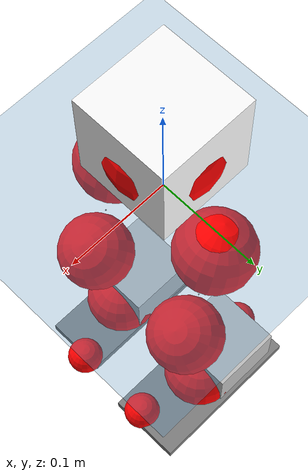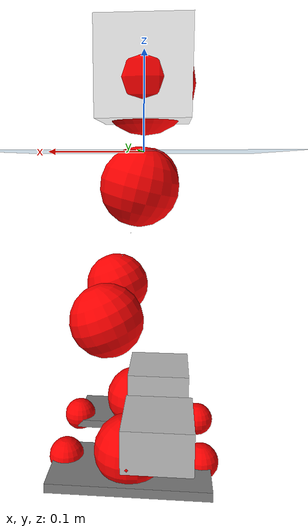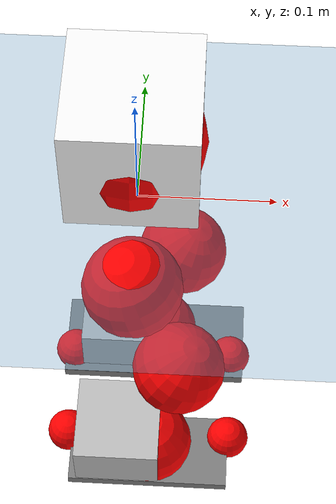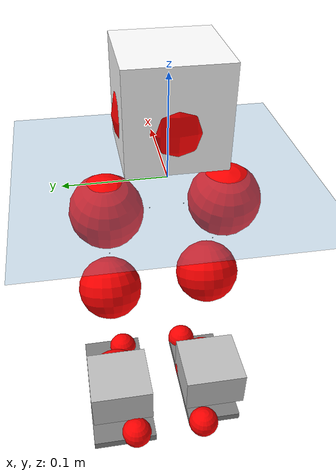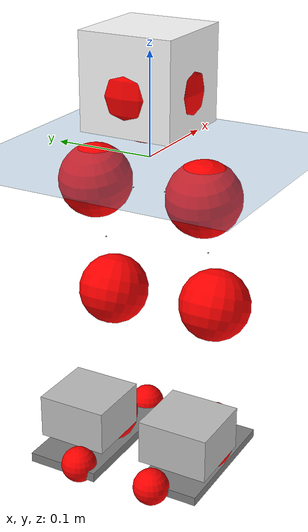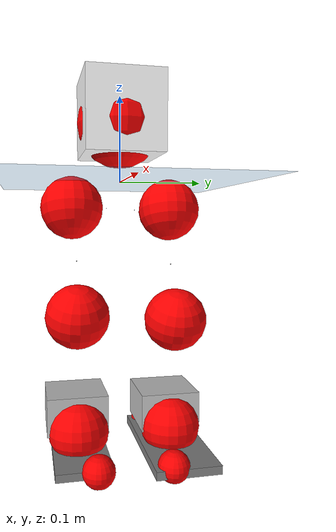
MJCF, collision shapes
<mujoco model="pi_12dof_release_v1">
  <compiler angle="radian" assetdir="assets" balanceinertia="true" inertiafromgeom="false"/>

  <option timestep="0.005" density="1.2" viscosity="2e-05"/>

  <size nkey="1"/>

  <visual>
    <quality shadowsize="8192"/>
    <map shadowclip="0.5"/>
  </visual>

  <default>
    <default class="/">
      <joint armature="0.01" damping="0.01" frictionloss="0.01"/>
      <geom contype="0" conaffinity="0" group="1" solref="-1000 -80"/>
      <site size="0.01 0.005 0.005" group="5"/>
      <general forcelimited="true" biastype="affine" gainprm="20" biasprm="0 -20 -0.5"/>
      <default class="foot">
        <geom size="0.0845 0.036 0.005" type="box" condim="6" group="4" priority="1" friction="0.9 0.2 0.2" solimp="0.015 1 0.005"/>
      </default>
      <default class="reward_collision_sphere">
        <geom group="5" rgba="1 0 0 1"/>
      </default>
    </default>
  </default>

  <asset>
    <texture type="skybox" colorspace="auto" name="//unnamed_texture_0" builtin="gradient" rgb1="0.95 0.95 0.95" rgb2="0.95 0.95 0.95" width="100" height="600"/>
    <texture type="2d" colorspace="auto" name="texplane" builtin="checker" rgb1="0.345 0.575 0.748" rgb2="0.345 0.575 0.748" markrgb="1 1 1" width="512" height="512"/>
    <material name="MatPlane" class="/" texture="texplane" texuniform="true" texrepeat="2 2" specular="0.9"/>
    <mesh name="baselink_1" class="/" file="baselink_1.STL"/>
    <mesh name="r_hip_pitch_link" class="/" file="r_hip_pitch_link.STL"/>
    <mesh name="r_hip_roll_link" class="/" file="r_hip_roll_link.STL"/>
    <mesh name="r_thigh_link" class="/" file="r_thigh_link.STL"/>
    <mesh name="r_calf_link" class="/" file="r_calf_link.STL"/>
    <mesh name="r_ankle_pitch_link" class="/" file="r_ankle_pitch_link.STL"/>
    <mesh name="r_ankle_roll_link" class="/" file="r_ankle_roll_link.STL"/>
    <mesh name="l_hip_pitch_link" class="/" file="l_hip_pitch_link.STL"/>
    <mesh name="l_hip_roll_link" class="/" file="l_hip_roll_link.STL"/>
    <mesh name="l_thigh_link" class="/" file="l_thigh_link.STL"/>
    <mesh name="l_calf_link" class="/" file="l_calf_link.STL"/>
    <mesh name="l_ankle_pitch_link" class="/" file="l_ankle_pitch_link.STL"/>
    <mesh name="l_ankle_roll_link" class="/" file="l_ankle_roll_link.STL"/>
  </asset>

  <worldbody>
    <geom name="floor" class="/" size="100 100 0.125" type="plane" group="0" material="MatPlane"/>
    <light name="toplight_shadow" class="/" pos="0 0 5" dir="0.0990148 0.0990148 -0.990148" type="directional" ambient="0.04 0.04 0.04" diffuse="0.55 0.55 0.55" specular="0.12 0.12 0.12"/>
    <light name="toplight_fill" class="/" pos="0 0 5" dir="0.0990148 0.0990148 -0.990148" type="directional" castshadow="false" ambient="0.04 0.04 0.04" diffuse="0.3 0.3 0.3" specular="0.08 0.08 0.08"/>
    <body name="trunk" pos="-0.00104895 -8.94643e-06 0.000312283" quat="1 9.34883e-05 -0.00023762 3.10363e-05">
      <inertial pos="0.00263727 -0.00105388 0.038994" quat="0.700067 0.0146693 0.0105977 0.713848" mass="1.66445" diaginertia="0.0135498 0.00207649 0.00328389"/>
      <joint name="//unnamed_joint_0" type="free"/>
      <geom name="//unnamed_geom_1" class="/" type="mesh" density="0" rgba="1 1 1 1" mesh="baselink_1"/>
      <geom name="//unnamed_geom_2" class="/" size="0.0459819 0.0459819 0.0459819" pos="0 0 0.0759993" type="box" rgba="1 1 1 1"/>
      <geom name="//unnamed_geom_3" class="reward_collision_sphere" size="0.0505801" pos="0 0 0.0664994"/>
      <site name="imu" class="/" pos="-1.88237e-05 -0.0128058 0.00493136" size="0.00919639"/>
      <camera name="track" class="/" pos="0 -1.49138 0" quat="0.707107 0.707107 0 0" mode="trackcom"/>
      <camera name="ego_camera" class="/" pos="0.0797426 0 0.170998" quat="-0.5 -0.5 0.5 0.5"/>
      <body name="r_hip_pitch_link" pos="0.000526326 -0.0164722 -0.0316028" quat="0.992107 0.000508445 -0.125388 -0.000857153">
        <inertial pos="0.00118464 -0.0422181 0.000458758" quat="-0.0144505 0.706657 -0.0248434 0.706972" mass="0.2965" diaginertia="0.000151933 2.32637e-05 6.59426e-05"/>
        <joint name="r_hip_pitch_joint" class="/" pos="0 0 0" axis="0.000222379 -0.999974 0.00723989" range="-1.74898 1.26066" armature="0.00924873" damping="0.00832761" frictionloss="0.00873247"/>
        <geom name="//unnamed_geom_4" class="/" type="mesh" density="0" rgba="0.75294 0.75294 0.75294 1" mesh="r_hip_pitch_link"/>
        <geom name="//unnamed_geom_5" class="/" size="0.000459819 0.000459819 0.000459819" type="box" rgba="0.75294 0.75294 0.75294 1"/>
        <body name="r_hip_roll_link" pos="0.000397197 -0.0412662 0.000262449" quat="1 7.75239e-05 -8.24956e-05 -1.65646e-05">
          <inertial pos="-0.00119768 -0.00255891 -0.0608264" quat="0.707831 -0.0804052 -0.0782388 0.697416" mass="0.305316" diaginertia="0.000455012 6.45574e-05 9.93315e-05"/>
          <joint name="r_hip_roll_joint" class="/" pos="0 0 0" axis="-0.999983 -0.0052724 -0.00230937" range="-0.115235 0.542555" armature="0.00866943" damping="0.0119605" frictionloss="0.00967504"/>
          <geom name="//unnamed_geom_6" class="/" type="mesh" density="0" rgba="0.75294 0.75294 0.75294 1" mesh="r_hip_roll_link"/>
          <geom name="//unnamed_geom_7" class="/" size="0.000459819 0.000459819 0.000459819" type="box" rgba="0.75294 0.75294 0.75294 1"/>
          <geom name="//unnamed_geom_8" class="reward_collision_sphere" size="0.0367855"/>
          <body name="r_thigh_link" pos="0.00222552 0.00302275 -0.06443" quat="1 3.25507e-05 -0.000190729 0.000185522">
            <inertial pos="0.00115762 0.000597219 -0.0444484" quat="0.736586 0.676344 0.000444285 -0.000160769" mass="0.0899831" diaginertia="0.000171355 2.2e-05 4.48557e-05"/>
            <joint name="r_thigh_joint" class="/" pos="0 0 0" axis="0.00549216 0.000995637 -0.999984" stiffness="0.00483876" range="-0.32189 0.577431" armature="0.00897989" damping="0" frictionloss="0.00801709"/>
            <geom name="//unnamed_geom_9" class="/" type="mesh" density="0" rgba="0.75294 0.75294 0.75294 1" mesh="r_thigh_link"/>
            <geom name="//unnamed_geom_10" class="/" size="0.000459819 0.000459819 0.000459819" type="box" rgba="0.75294 0.75294 0.75294 1"/>
            <body name="r_calf_link" pos="1.18995e-05 -0.00102117 -0.0644865" quat="0.947634 2.30275e-05 0.319357 1.7861e-05">
              <inertial pos="0.000800931 -0.00129961 -0.0665883" quat="0.999895 -0.00231441 0.0105404 0.00962843" mass="0.65029" diaginertia="0.00494103 0.000822795 0.000138355"/>
              <joint name="r_calf_joint" class="/" pos="0 0 0" axis="0.00391683 -0.999971 0.00654275" range="-1.60561 0.650907" armature="0.00847549" damping="0.00977117" frictionloss="0.00921329"/>
              <geom name="//unnamed_geom_11" class="/" type="mesh" density="0" rgba="0.75294 0.75294 0.75294 1" mesh="r_calf_link"/>
              <geom name="//unnamed_geom_12" class="/" size="0.000459819 0.000459819 0.000459819" type="box" rgba="0.75294 0.75294 0.75294 1"/>
              <geom name="//unnamed_geom_13" class="reward_collision_sphere" size="0.0367855"/>
              <body name="r_ankle_pitch_link" pos="0.000824637 0.00105425 -0.134232" quat="0.980051 -0.000518639 -0.198744 0.000125455">
                <inertial pos="0.00553102 0.00274463 -0.00266648" quat="-0.00768814 0.708808 0.00558811 0.705337" mass="0.139058" diaginertia="0.00043149 5.26014e-05 9.53612e-05"/>
                <joint name="r_ankle_pitch_joint" class="/" pos="0 0 0" axis="0.000757739 -0.999985 0.00544362" range="-1.29526 0.551416" armature="0.00925416" damping="0.00956503" frictionloss="0.0101227"/>
                <geom name="//unnamed_geom_14" class="/" type="mesh" density="0" rgba="0.75294 0.75294 0.75294 1" mesh="r_ankle_pitch_link"/>
                <geom name="//unnamed_geom_15" class="/" size="0.0358659 0.0367855 0.022991" type="box" rgba="0.75294 0.75294 0.75294 1"/>
                <body name="r_ankle_roll_link" pos="0.0801409 0.00128917 -0.00106673" quat="1 5.43158e-05 7.81881e-05 0.000225176">
                  <inertial pos="-0.0256516 0.000582455 -0.0112538" quat="0.560234 0.430444 0.434012 0.559008" mass="0.383392" diaginertia="0.00147323 0.000237487 0.00020626"/>
                  <joint name="r_ankle_roll_joint" class="/" pos="0 0 0" axis="-0.999926 0.00738377 -0.00968505" range="-0.13814 0.110734" armature="0.00809943" damping="0.0159875" frictionloss="0.00920546"/>
                  <geom name="//unnamed_geom_16" class="/" type="mesh" density="0" rgba="0.75294 0.75294 0.75294 1" mesh="r_ankle_roll_link"/>
                  <geom name="//unnamed_geom_17" class="/" type="mesh" rgba="0.75294 0.75294 0.75294 1" mesh="r_ankle_roll_link"/>
                  <geom name="right_foot" class="foot" size="0.0700425 0.0323159 0.00456623" pos="-0.054225 0 -0.0417996"/>
                  <geom name="//unnamed_geom_19" class="reward_collision_sphere" size="0.0367855" pos="-0.0531618 0 -0.0189998"/>
                  <geom name="//unnamed_geom_20" class="reward_collision_sphere" size="0.0183928" pos="0.0159485 0.0149138 -0.0379996"/>
                  <geom name="//unnamed_geom_21" class="reward_collision_sphere" size="0.0183928" pos="-0.127588 0.0149138 -0.0379996"/>
                  <site name="right_foot" class="foot" pos="-0.054225 0 -0.0417996" size="0.00919639"/>
                </body>
              </body>
            </body>
          </body>
        </body>
      </body>
      <body name="l_hip_pitch_link" pos="0.000932719 0.017851 -0.0332873" quat="0.992182 -4.89145e-05 -0.1248 0.000168081">
        <inertial pos="0.00108098 0.0396664 -0.00234047" quat="-0.039049 0.705559 0.0297435 0.706949" mass="0.310671" diaginertia="0.000178207 2.39324e-05 7.82281e-05"/>
        <joint name="l_hip_pitch_joint" class="/" pos="0 0 0" axis="0.00185318 0.999997 -0.0017365" stiffness="0.00058402" range="-1.2214 1.76371" armature="0.00983062" damping="0.0129273" frictionloss="0.00924658"/>
        <geom name="//unnamed_geom_22" class="/" type="mesh" density="0" rgba="0.75294 0.75294 0.75294 1" mesh="l_hip_pitch_link"/>
        <geom name="//unnamed_geom_23" class="/" size="0.000459819 0.000459819 0.000459819" type="box" rgba="0.75294 0.75294 0.75294 1"/>
        <body name="l_hip_roll_link" pos="0.000716681 0.042745 -3.55559e-05" quat="1 6.24084e-05 0.000182007 -3.11029e-05">
          <inertial pos="-0.00342519 -0.000930438 -0.0605712" quat="0.704612 -0.0790824 -0.0710798 0.701581" mass="0.300759" diaginertia="0.000434967 6.3456e-05 9.56831e-05"/>
          <joint name="l_hip_roll_joint" class="/" pos="0 0 0" axis="-1 -0.000349678 -9.2438e-05" range="-0.548325 0.14693" armature="0.00927889" damping="0" frictionloss="0.00921577"/>
          <geom name="//unnamed_geom_24" class="/" type="mesh" density="0" rgba="0.75294 0.75294 0.75294 1" mesh="l_hip_roll_link"/>
          <geom name="//unnamed_geom_25" class="/" size="0.000459819 0.000459819 0.000459819" type="box" rgba="0.75294 0.75294 0.75294 1"/>
          <geom name="//unnamed_geom_26" class="reward_collision_sphere" size="0.0367855"/>
          <body name="l_thigh_link" pos="-0.000775215 -0.00121099 -0.0672523" quat="1 -0.000139156 5.3215e-05 -4.95657e-05">
            <inertial pos="0.000384614 -0.00194142 -0.0444519" quat="0.672606 0.739966 0.00673034 -0.00253116" mass="0.0861921" diaginertia="0.000169252 2.15722e-05 4.53425e-05"/>
            <joint name="l_thigh_joint" class="/" pos="0 0 0" axis="-0.000177084 0.000146643 -1" range="-0.606497 0.300753" armature="0.00910493" damping="0.00310421" frictionloss="0.00910683"/>
            <geom name="//unnamed_geom_27" class="/" type="mesh" density="0" rgba="0.75294 0.75294 0.75294 1" mesh="l_thigh_link"/>
            <geom name="//unnamed_geom_28" class="/" size="0.000459819 0.000459819 0.000459819" type="box" rgba="0.75294 0.75294 0.75294 1"/>
            <body name="l_calf_link" pos="-0.000689054 0.00122809 -0.0666829" quat="0.947518 -0.000204093 0.319701 -4.98207e-05">
              <inertial pos="0.000132518 0.00411404 -0.0679941" quat="0.999982 0.00299114 -0.000175819 0.00515802" mass="0.607698" diaginertia="0.00465119 0.000786624 0.000130542"/>
              <joint name="l_calf_joint" class="/" pos="0 0 0" axis="0.000273557 1 0.000180046" stiffness="0.00309461" range="-0.599022 1.69757" armature="0.00927984" damping="0.0061573" frictionloss="0.00872225"/>
              <geom name="//unnamed_geom_29" class="/" type="mesh" density="0" rgba="0.75294 0.75294 0.75294 1" mesh="l_calf_link"/>
              <geom name="//unnamed_geom_30" class="/" size="0.000459819 0.000459819 0.000459819" type="box" rgba="0.75294 0.75294 0.75294 1"/>
              <geom name="//unnamed_geom_31" class="reward_collision_sphere" size="0.0367855"/>
              <body name="l_ankle_pitch_link" pos="-0.000949916 0.000652282 -0.130812" quat="0.98007 -6.94886e-05 -0.198654 4.38939e-05">
                <inertial pos="0.00467729 0.000212604 -0.000351333" quat="-0.00190141 0.707007 0.00247012 0.707199" mass="0.130966" diaginertia="0.000405852 4.97385e-05 9.25684e-05"/>
                <joint name="l_ankle_pitch_joint" class="/" pos="0 0 0" axis="-0.00123173 0.999998 0.00168366" range="-0.550955 1.30576" armature="0.00850906" damping="0.00906127" frictionloss="0.00884839"/>
                <geom name="//unnamed_geom_32" class="/" type="mesh" density="0" rgba="0.75294 0.75294 0.75294 1" mesh="l_ankle_pitch_link"/>
                <geom name="//unnamed_geom_33" class="/" size="0.0358659 0.0367855 0.022991" type="box" rgba="0.75294 0.75294 0.75294 1"/>
                <body name="l_ankle_roll_link" pos="0.0824632 0.000274142 0.000674179" quat="1 0.000114487 0.000255414 -0.000199876">
                  <inertial pos="-0.0266458 -0.00062124 -0.0136526" quat="0.559757 0.431079 0.434377 0.558713" mass="0.393082" diaginertia="0.00153635 0.000234038 0.000218595"/>
                  <joint name="l_ankle_roll_joint" class="/" pos="0 0 0" axis="-0.999989 0.00163997 -0.00428107" range="-0.171443 0.152028" armature="0.00976799" damping="0.00571773" frictionloss="0.00917339"/>
                  <geom name="//unnamed_geom_34" class="/" type="mesh" density="0" rgba="0.75294 0.75294 0.75294 1" mesh="l_ankle_roll_link"/>
                  <geom name="//unnamed_geom_35" class="/" type="mesh" rgba="0.75294 0.75294 0.75294 1" mesh="l_ankle_roll_link"/>
                  <geom name="left_foot" class="foot" size="0.0822262 0.0381083 0.0049888" pos="-0.054225 0 -0.0417996"/>
                  <geom name="//unnamed_geom_37" class="reward_collision_sphere" size="0.0367855" pos="-0.0531618 0 -0.0189998"/>
                  <geom name="//unnamed_geom_38" class="reward_collision_sphere" size="0.0183928" pos="0.0159485 -0.0149138 -0.0379996"/>
                  <geom name="//unnamed_geom_39" class="reward_collision_sphere" size="0.0183928" pos="-0.127588 -0.0149138 -0.0379996"/>
                  <site name="left_foot" class="foot" pos="-0.054225 0 -0.0417996" size="0.00919639"/>
                </body>
              </body>
            </body>
          </body>
        </body>
      </body>
    </body>
  </worldbody>

  <contact>
    <pair class="/" geom1="floor" geom2="right_foot" name="//unnamed_contact_1"/>
    <pair class="/" geom1="floor" geom2="left_foot" name="//unnamed_contact_0"/>
  </contact>

  <actuator>
    <general name="r_hip_pitch_joint" class="/" joint="r_hip_pitch_joint" forcerange="-19.3123 19.3123" gainprm="18.5917" biasprm="0 -18.5917 -0.473173"/>
    <general name="r_hip_roll_joint" class="/" joint="r_hip_roll_joint" forcerange="-17.8115 17.8115" gainprm="18.5917" biasprm="0 -18.5917 -0.473173"/>
    <general name="r_thigh_joint" class="/" joint="r_thigh_joint" forcerange="-19.2297 19.2297" gainprm="18.5917" biasprm="0 -18.5917 -0.473173"/>
    <general name="r_calf_joint" class="/" joint="r_calf_joint" forcerange="-20.0442 20.0442" gainprm="18.5917" biasprm="0 -18.5917 -0.473173"/>
    <general name="r_ankle_pitch_joint" class="/" joint="r_ankle_pitch_joint" forcerange="-18.5816 18.5816" gainprm="18.5917" biasprm="0 -18.5917 -0.473173"/>
    <general name="r_ankle_roll_joint" class="/" joint="r_ankle_roll_joint" forcerange="-19.2119 19.2119" gainprm="18.5917" biasprm="0 -18.5917 -0.473173"/>
    <general name="l_hip_pitch_joint" class="/" joint="l_hip_pitch_joint" forcerange="-18.8892 18.8892" gainprm="18.5917" biasprm="0 -18.5917 -0.473173"/>
    <general name="l_hip_roll_joint" class="/" joint="l_hip_roll_joint" forcerange="-20.7088 20.7088" gainprm="18.5917" biasprm="0 -18.5917 -0.473173"/>
    <general name="l_thigh_joint" class="/" joint="l_thigh_joint" forcerange="-17.6831 17.6831" gainprm="18.5917" biasprm="0 -18.5917 -0.473173"/>
    <general name="l_calf_joint" class="/" joint="l_calf_joint" forcerange="-19.6514 19.6514" gainprm="18.5917" biasprm="0 -18.5917 -0.473173"/>
    <general name="l_ankle_pitch_joint" class="/" joint="l_ankle_pitch_joint" forcerange="-19.5192 19.5192" gainprm="18.5917" biasprm="0 -18.5917 -0.473173"/>
    <general name="l_ankle_roll_joint" class="/" joint="l_ankle_roll_joint" forcerange="-21.1673 21.1673" gainprm="18.5917" biasprm="0 -18.5917 -0.473173"/>
  </actuator>

  <sensor>
    <gyro site="imu" name="imu_angular_velocity"/>
    <velocimeter site="imu" name="imu_linear_velocity"/>
    <framelinvel objtype="site" objname="left_foot" name="left_foot_global_linear_velocity"/>
    <framelinvel objtype="site" objname="right_foot" name="right_foot_global_linear_velocity"/>
  </sensor>

  <keyframe>
    <key name="home" qpos="0 0 0.291 1 0 0 0 0.4 0 0 -0.8 0.4 0 -0.4 0 0 0.8 -0.4 0"/>
  </keyframe>
</mujoco>
